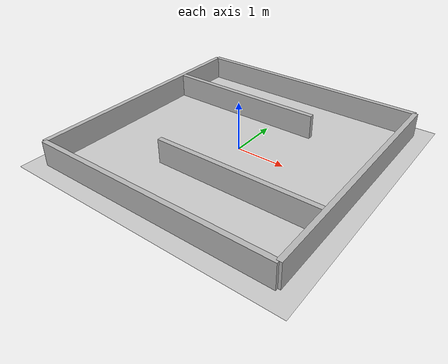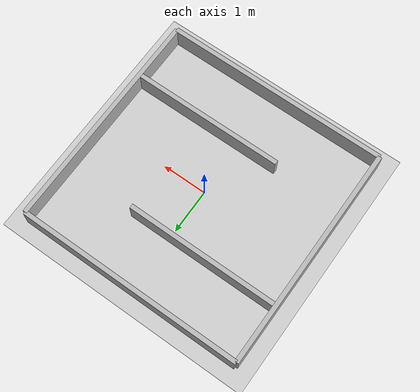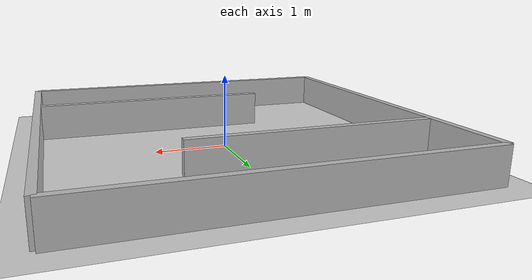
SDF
<?xml version="1.0"?>
<sdf version="1.6">
  <world name="maze_world">

    <!-- lighting -->
    <include>
      <uri>model://sun</uri>
    </include>

    <!-- ground plane -->
    <include>
      <uri>model://ground_plane</uri>
    </include>

    <!-- ===== Outer walls (5x5 arena) ===== -->
    <model name="north_wall">
      <static>true</static>
      <link name="link">
        <collision name="collision"><geometry><box><size>5 0.1 0.5</size></box></geometry></collision>
        <visual name="visual"><geometry><box><size>5 0.1 0.5</size></box></geometry></visual>
      </link>
      <pose>0 2.5 0.25 0 0 0</pose>
    </model>

    <model name="south_wall">
      <static>true</static>
      <link name="link">
        <collision name="collision"><geometry><box><size>5 0.1 0.5</size></box></geometry></collision>
        <visual name="visual"><geometry><box><size>5 0.1 0.5</size></box></geometry></visual>
      </link>
      <pose>0 -2.5 0.25 0 0 0</pose>
    </model>

    <model name="east_wall">
      <static>true</static>
      <link name="link">
        <collision name="collision"><geometry><box><size>0.1 5 0.5</size></box></geometry></collision>
        <visual name="visual"><geometry><box><size>0.1 5 0.5</size></box></geometry></visual>
      </link>
      <pose>2.5 0 0.25 0 0 0</pose>
    </model>

    <model name="west_wall">
      <static>true</static>
      <link name="link">
        <collision name="collision"><geometry><box><size>0.1 5 0.5</size></box></geometry></collision>
        <visual name="visual"><geometry><box><size>0.1 5 0.5</size></box></geometry></visual>
      </link>
      <pose>-2.5 0 0.25 0 0 0</pose>
    </model>

    <!-- ===== Internal maze walls ===== -->
    <!-- Upper wall: runs from the west wall to x=0.9 (gap on the right). -->
    <model name="maze_wall_upper">
      <static>true</static>
      <link name="link">
        <collision name="collision"><geometry><box><size>3.35 0.1 0.5</size></box></geometry></collision>
        <visual name="visual"><geometry><box><size>3.35 0.1 0.5</size></box></geometry></visual>
      </link>
      <pose>-0.775 1.2 0.25 0 0 0</pose>
    </model>

    <!-- Lower wall: runs from x=-0.9 to the east wall (gap on the left). -->
    <model name="maze_wall_lower">
      <static>true</static>
      <link name="link">
        <collision name="collision"><geometry><box><size>3.35 0.1 0.5</size></box></geometry></collision>
        <visual name="visual"><geometry><box><size>3.35 0.1 0.5</size></box></geometry></visual>
      </link>
      <pose>0.775 -1.2 0.25 0 0 0</pose>
    </model>

    <!-- ===== Pillars (local obstacles for the costmap) ===== -->

  </world>
</sdf>
